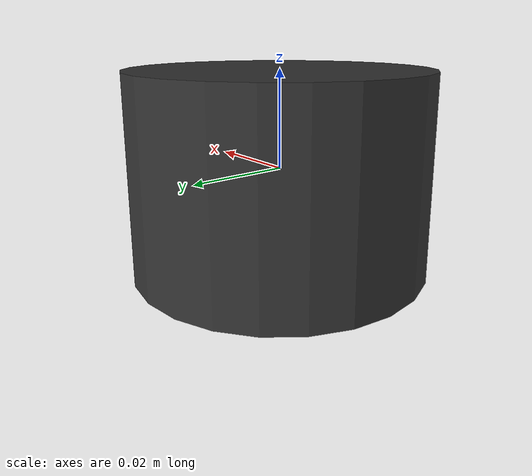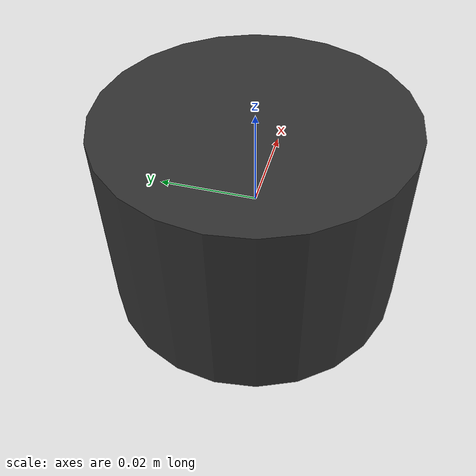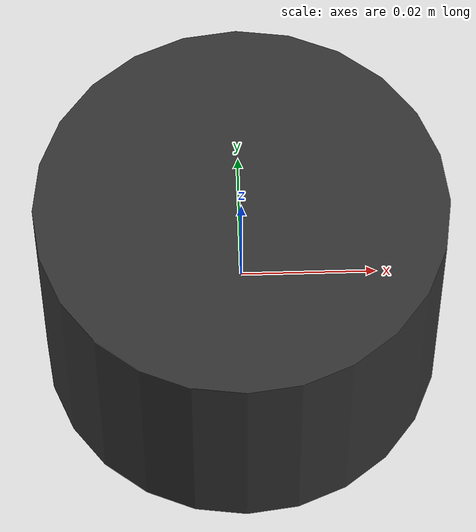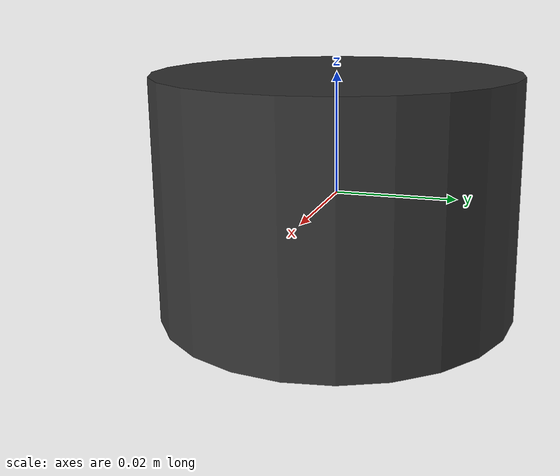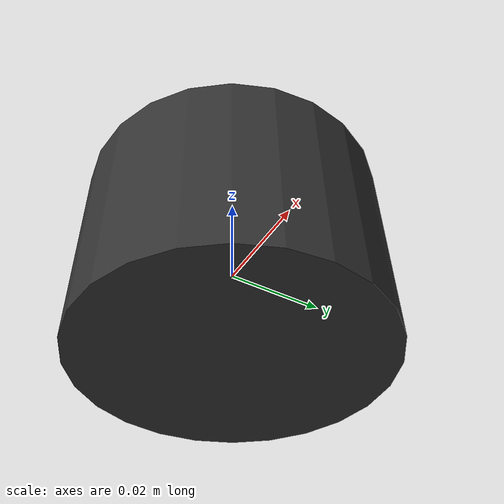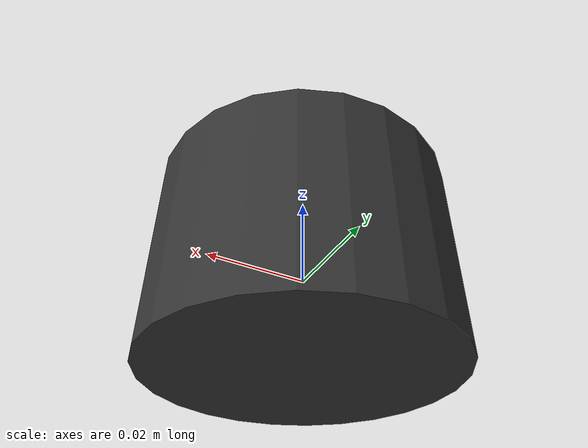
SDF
<?xml version="1.0"?>
<sdf version="1.9">
  <model name="lidar_2d_model">
    <static>false</static>

    <link name="lidar_2d_link">
      <!-- Visual representation of LiDAR -->
      <visual name="lidar_visual">
        <geometry>
          <cylinder>
            <radius>0.03</radius>
            <length>0.04</length>
          </cylinder>
        </geometry>
        <material>
          <ambient>0.1 0.1 0.1 1</ambient>
          <diffuse>0.2 0.2 0.2 1</diffuse>
        </material>
      </visual>

      <!-- Collision for physics -->
      <collision name="lidar_collision">
        <geometry>
          <cylinder>
            <radius>0.03</radius>
            <length>0.04</length>
          </cylinder>
        </geometry>
      </collision>

      <!-- Inertial properties -->
      <inertial>
        <mass>0.15</mass>
        <inertia>
          <ixx>0.00005</ixx>
          <iyy>0.00005</iyy>
          <izz>0.00003</izz>
        </inertia>
      </inertial>

      <!-- 2D LiDAR Sensor -->
      <sensor name="lidar_2d" type="gpu_lidar">
        <!-- Sensor pose relative to link (usually centered) -->
        <pose>0 0 0 0 0 0</pose>

        <!-- ROS topic name -->
        <topic>/humanoid/lidar_2d/scan</topic>

        <!-- Update frequency (Hz) -->
        <update_rate>10</update_rate>

        <!-- Enable visualization rays in Gazebo -->
        <visualize>true</visualize>

        <!-- Always publish, even without subscribers -->
        <always_on>true</always_on>

        <lidar>
          <scan>
            <!-- Horizontal scan (2D LiDAR only uses horizontal) -->
            <horizontal>
              <!-- Number of samples per scan -->
              <samples>720</samples>

              <!-- Resolution multiplier (1 = no interpolation) -->
              <resolution>1</resolution>

              <!-- Minimum angle (radians) -180 degrees -->
              <min_angle>-3.14159</min_angle>

              <!-- Maximum angle (radians) +180 degrees -->
              <max_angle>3.14159</max_angle>
            </horizontal>

            <!-- For 2D LiDAR, vertical has 1 sample -->
            <vertical>
              <samples>1</samples>
              <resolution>1</resolution>
              <min_angle>0</min_angle>
              <max_angle>0</max_angle>
            </vertical>
          </scan>

          <range>
            <!-- Minimum detection distance (meters) -->
            <min>0.10</min>

            <!-- Maximum detection distance (meters) -->
            <max>30.0</max>

            <!-- Range resolution (meters) -->
            <resolution>0.01</resolution>
          </range>

          <!-- Noise model -->
          <noise>
            <type>gaussian</type>
            <mean>0.0</mean>
            <!-- Standard deviation in meters (1cm) -->
            <stddev>0.01</stddev>
          </noise>
        </lidar>
      </sensor>
    </link>
  </model>
</sdf>
